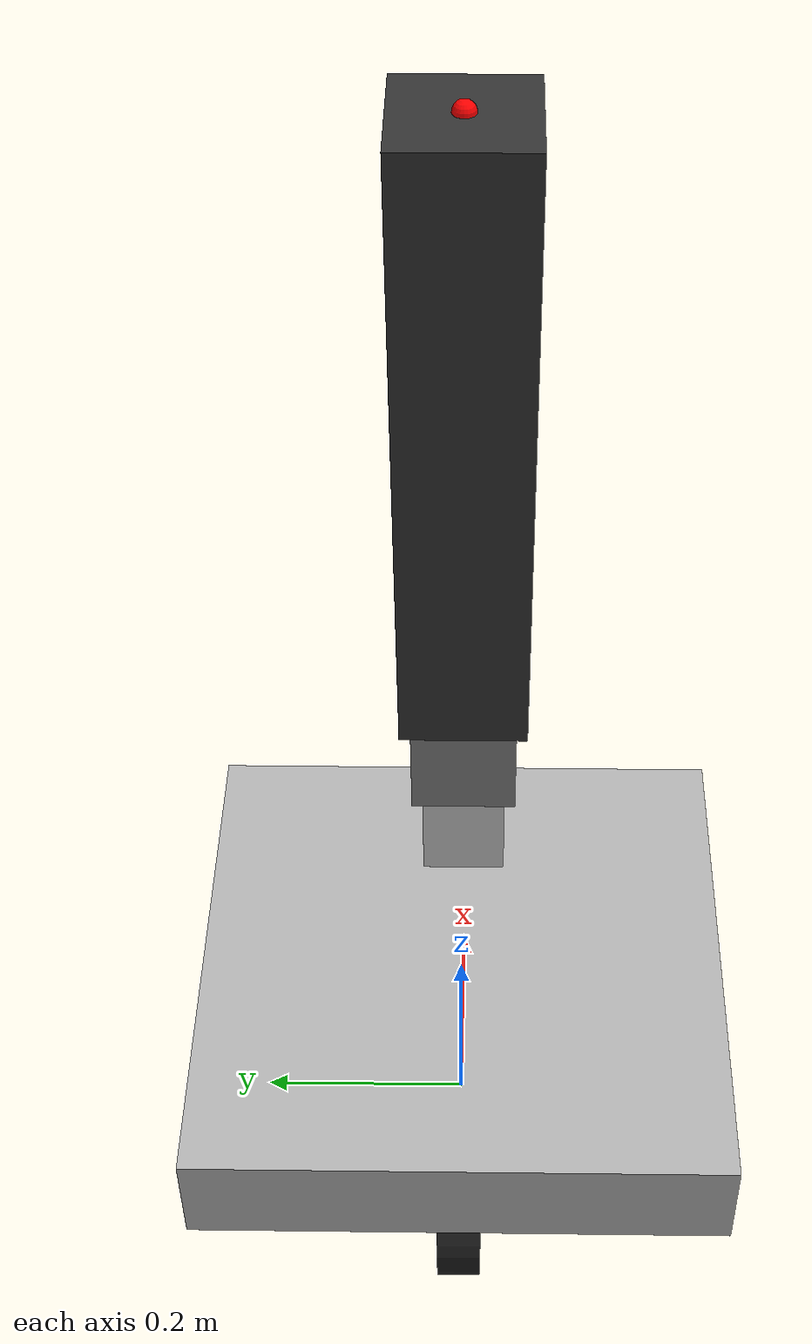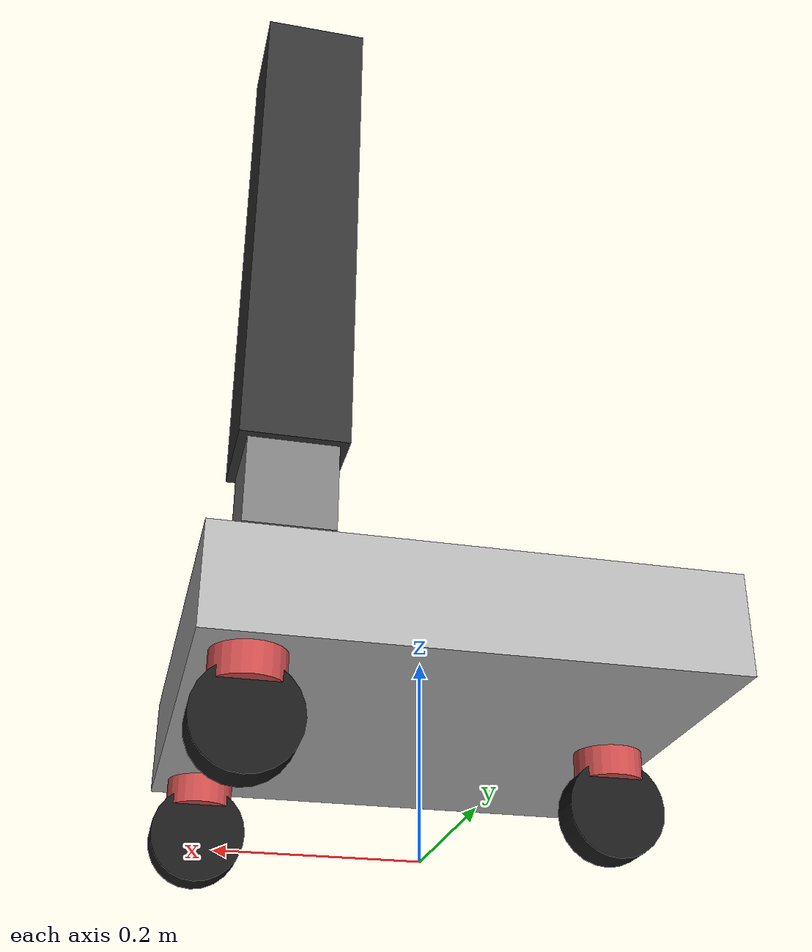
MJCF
<mujoco model="mabel_assembled">
    <option gravity="0 0 -9.81" timestep="0.002" integrator="implicitfast"/>

    <asset>
        <material name="lift_outer_mat" rgba="0.2 0.2 0.2 1"/>
        <material name="lift_middle_mat" rgba="0.5 0.5 0.5 1"/>
        <material name="lift_inner_mat" rgba="0.8 0.8 0.8 1"/>

        <material name="base_chassis_mat" rgba="0.7 0.7 0.7 1"/>
        <material name="wheel_mat" rgba="0.1 0.1 0.1 1"/>
        <material name="steer_motor_mat" rgba="0.2 0.4 0.8 1"/>
        <material name="drive_motor_mat" rgba="0.8 0.3 0.3 1"/>
    </asset>

    <worldbody>
        <body name="chassis" pos="0 0 0.17">
            <freejoint name="base_freejoint"/>

            <geom type="box" size="0.25 0.25 0.05" material="base_chassis_mat" mass="40" contype="1" conaffinity="0"/>

            <geom type="box" pos="0.15 0 0.35" size="0.04 0.04 0.3" material="lift_inner_mat" mass="2" contype="1" conaffinity="0"/>

            <geom name="steer_motor_fl" type="cylinder" size="0.02 0.04" pos="0.15 0.2 0.0" material="steer_motor_mat" mass="0.5" contype="1" conaffinity="0"/>
            <geom name="steer_motor_fr" type="cylinder" size="0.02 0.04" pos="0.15 -0.2 0.0" material="steer_motor_mat" mass="0.5" contype="1" conaffinity="0"/>
            <geom name="steer_motor_bc" type="cylinder" size="0.02 0.04" pos="-0.15 0 0.0" material="steer_motor_mat" mass="0.5" contype="1" conaffinity="0"/>

            <body name="lift_middle" pos="0.15 0 0.45">
                <joint name="slide_middle" type="slide" axis="0 0 1" range="-0.02 0.42" limited="true" armature="1" frictionloss="2" damping="2"/>
                <geom type="box" size="0.05 0.05 0.3" material="lift_middle_mat" mass="1" contype="1" conaffinity="0"/>

                <body name="lift_top" pos="0 0 0.1">
                    <joint name="slide_top" type="slide" axis="0 0 1" range="-0.02 0.42" limited="true" armature="1" frictionloss="2" damping="2"/>
                    <geom type="box" size="0.06 0.06 0.3" material="lift_outer_mat" mass="1" contype="1" conaffinity="0"/>
                    <site name="torso_mount_point" pos="0 0 0.3" size="0.01" rgba="1 0 0 1"/>
                </body>
            </body>

            <body name="swerve_fl" pos="0.2 0.2 -0.06">
                <joint name="steer_fl" type="hinge" axis="0 0 1" limited="false" damping="0.5" frictionloss="0.1"/>
                <geom type="cylinder" size="0.035 0.05" pos="0 0 0.03" material="drive_motor_mat" mass="1.0" contype="1" conaffinity="0"/>

                <body name="wheel_fl" pos="0 0 -0.05">
                    <joint name="drive_fl" type="hinge" axis="0 1 0" damping="0.05"/>
                    <geom type="cylinder" size="0.05 0.02" euler="90 0 0" material="wheel_mat" mass="0.5" friction="1 0.005 0.0001" contype="1" conaffinity="0"/>
                </body>
            </body>

            <body name="swerve_fr" pos="0.2 -0.2 -0.06">
                <joint name="steer_fr" type="hinge" axis="0 0 1" limited="false" damping="0.5" frictionloss="0.1"/>
                <geom type="cylinder" size="0.035 0.05" pos="0 0 0.03" material="drive_motor_mat" mass="1.0" contype="1" conaffinity="0"/>

                <body name="wheel_fr" pos="0 0 -0.05">
                    <joint name="drive_fr" type="hinge" axis="0 1 0" damping="0.05"/>
                    <geom type="cylinder" size="0.05 0.02" euler="90 0 0" material="wheel_mat" mass="0.5" friction="1 0.005 0.0001" contype="1" conaffinity="0"/>
                </body>
            </body>

            <body name="swerve_bc" pos="-0.2 0 -0.06">
                <joint name="steer_bc" type="hinge" axis="0 0 1" limited="false" damping="0.5" frictionloss="0.1"/>
                <geom type="cylinder" size="0.035 0.05" pos="0 0 0.03" material="drive_motor_mat" mass="1.0" contype="1" conaffinity="0"/>

                <body name="wheel_bc" pos="0 0 -0.05">
                    <joint name="drive_bc" type="hinge" axis="0 1 0" damping="0.05"/>
                    <geom type="cylinder" size="0.05 0.02" euler="90 0 0" material="wheel_mat" mass="0.5" friction="1 0.005 0.0001" contype="1" conaffinity="0"/>
                </body>
            </body>

        </body>
    </worldbody>

    <contact>
        <exclude body1="chassis" body2="wheel_fl"/>
        <exclude body1="chassis" body2="wheel_fr"/>
        <exclude body1="chassis" body2="wheel_bc"/>
        <exclude body1="chassis" body2="lift_middle"/>
        <exclude body1="chassis" body2="lift_top"/>
    </contact>

    <equality>
        <joint joint1="slide_top" joint2="slide_middle" polycoef="0 1 0 0 0" solimp="0.8 0.99 0.001" solref="0.02 1"/>
    </equality>

    <actuator>
        <position name="act_lift" joint="slide_middle" kp="800" kv="50" ctrlrange="0 0.4" ctrllimited="true"/>

        <position name="act_steer_fl" joint="steer_fl" kp="20" kv="2" forcerange="-5 5"/>
        <position name="act_steer_fr" joint="steer_fr" kp="20" kv="2" forcerange="-5 5"/>
        <position name="act_steer_bc" joint="steer_bc" kp="20" kv="2" forcerange="-5 5"/>

        <velocity name="act_drive_fl" joint="drive_fl" kv="5" forcerange="-8 8"/>
        <velocity name="act_drive_fr" joint="drive_fr" kv="5" forcerange="-8 8"/>
        <velocity name="act_drive_bc" joint="drive_bc" kv="5" forcerange="-8 8"/>
    </actuator>
</mujoco>
